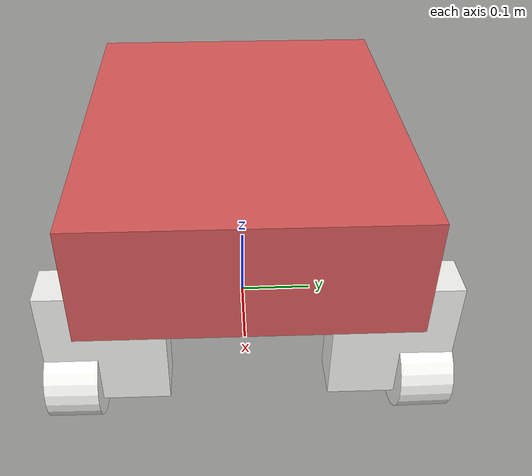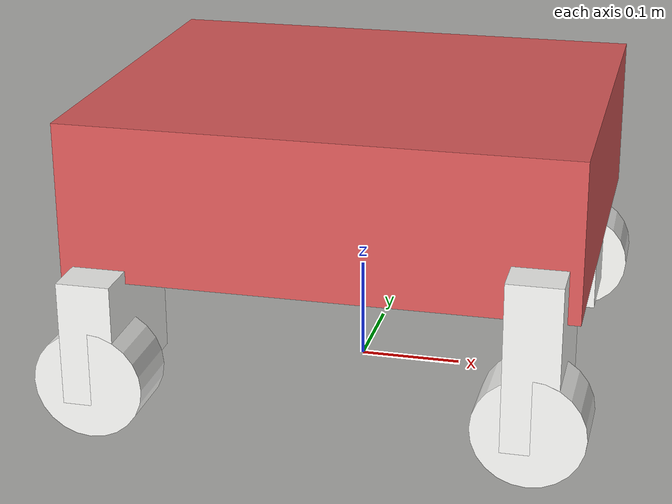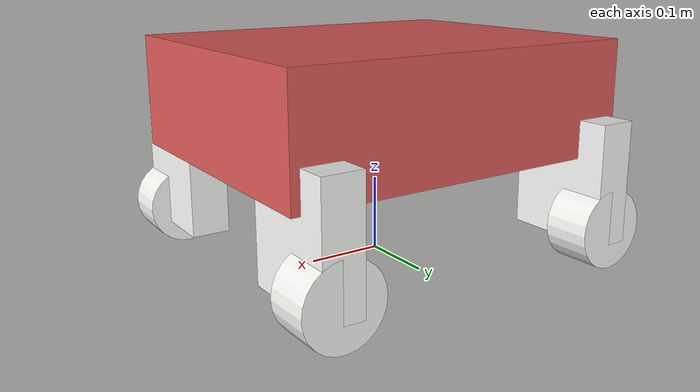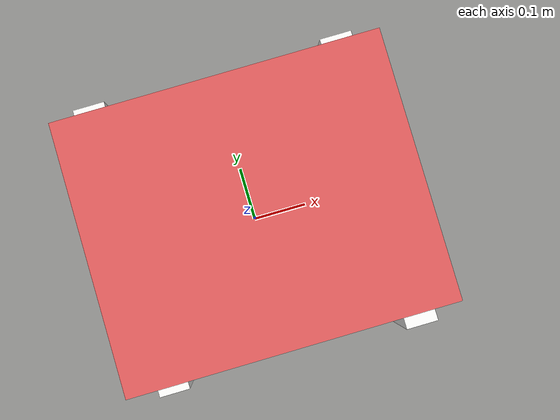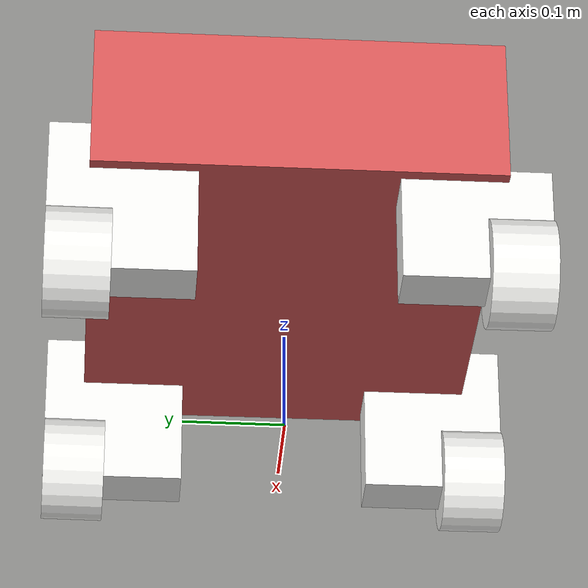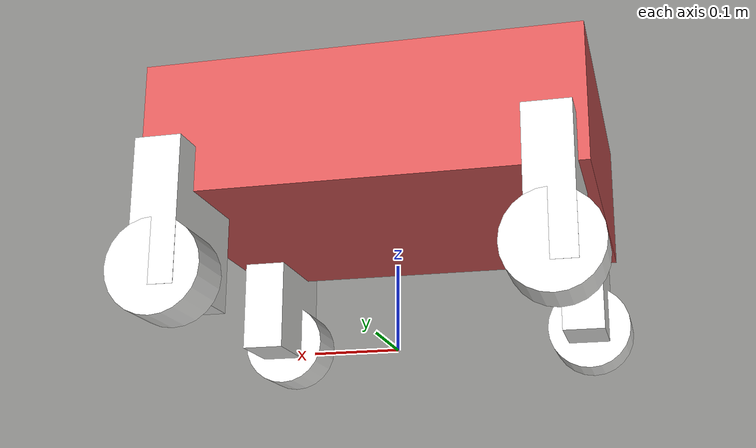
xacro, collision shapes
<?xml version="1.0" encoding="utf-8"?>
<!-- Robot model. Optional ros2_control block for real hardware (see enable_ros2_control). -->
<robot xmlns:xacro="http://www.ros.org/wiki/xacro" name="bot_v1">
  <xacro:arg name="mesh_dir" default="package://bot_description/meshes" />
  <xacro:arg name="use_lidar" default="false" />
  <xacro:arg name="use_camera" default="false" />
  <xacro:arg name="enable_ros2_control" default="false" />
  <xacro:arg name="ros2_control_name" default="bot_real_system" />
  <xacro:arg name="ros2_control_plugin" default="bot_hardware_interface/BotInterface" />
  <xacro:arg name="use_hw_topics" default="true" />

  <xacro:include filename="bot_v1.core.xacro" />
  <xacro:include filename="bot_v1.lidar.xacro" />
  <xacro:include filename="bot_v1.camera.xacro" />
  <xacro:bot_robot mesh_dir="$(arg mesh_dir)" />

  <xacro:if value="$(arg use_lidar)">
    <xacro:bot_lidar add_gazebo="false" />
  </xacro:if>

  <xacro:if value="$(arg use_camera)">
    <xacro:bot_camera mesh_dir="$(arg mesh_dir)" add_gazebo="false" />
  </xacro:if>

  <xacro:if value="$(arg enable_ros2_control)">
    <xacro:include filename="bot_v1.ros2_control.xacro" />
    <xacro:bot_ros2_control_hardware
      name="$(arg ros2_control_name)"
      plugin="$(arg ros2_control_plugin)"
      use_hw_topics="$(arg use_hw_topics)" />
  </xacro:if>
</robot>

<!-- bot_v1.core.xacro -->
<robot xmlns:xacro="http://www.ros.org/wiki/xacro">
  <xacro:macro
    name="mesh_box_link"
    params="name inertial_xyz mass ixx ixy ixz iyy iyz izz mesh_file rgba collision_origin collision_size mesh_uri_root">
    <link name="${name}">
      <inertial>
        <origin xyz="${inertial_xyz}" rpy="0 0 0" />
        <mass value="${mass}" />
        <inertia
          ixx="${ixx}"
          ixy="${ixy}"
          ixz="${ixz}"
          iyy="${iyy}"
          iyz="${iyz}"
          izz="${izz}" />
      </inertial>
      <visual>
        <origin xyz="0 0 0" rpy="0 0 0" />
        <geometry>
          <mesh filename="${mesh_uri_root}/${mesh_file}" />
        </geometry>
        <material name="">
          <color rgba="${rgba}" />
        </material>
      </visual>
      <collision>
        <origin xyz="${collision_origin}" rpy="0 0 0" />
        <geometry>
          <box size="${collision_size}" />
        </geometry>
      </collision>
    </link>
  </xacro:macro>

  <xacro:macro
    name="mesh_cylinder_link"
    params="name inertial_xyz mass ixx ixy ixz iyy iyz izz mesh_file rgba collision_origin collision_radius collision_length mesh_uri_root">
    <link name="${name}">
      <inertial>
        <origin xyz="${inertial_xyz}" rpy="0 0 0" />
        <mass value="${mass}" />
        <inertia
          ixx="${ixx}"
          ixy="${ixy}"
          ixz="${ixz}"
          iyy="${iyy}"
          iyz="${iyz}"
          izz="${izz}" />
      </inertial>
      <visual>
        <origin xyz="0 0 0" rpy="0 0 0" />
        <geometry>
          <mesh filename="${mesh_uri_root}/${mesh_file}" />
        </geometry>
        <material name="">
          <color rgba="${rgba}" />
        </material>
      </visual>
      <collision>
        <origin xyz="${collision_origin}" rpy="0 0 0" />
        <geometry>
          <cylinder radius="${collision_radius}" length="${collision_length}" />
        </geometry>
      </collision>
    </link>
  </xacro:macro>

  <xacro:macro name="steer_joint" params="name xyz parent child limit effort velocity damping friction">
    <joint name="${name}" type="revolute">
      <origin xyz="${xyz}" rpy="0 0 0" />
      <parent link="${parent}" />
      <child link="${child}" />
      <axis xyz="0 0 1" />
      <limit lower="${-limit}" upper="${limit}" effort="${effort}" velocity="${velocity}" />
      <dynamics damping="${damping}" friction="${friction}" />
    </joint>
  </xacro:macro>

  <xacro:macro name="drive_joint" params="name xyz rpy parent child axis effort velocity damping friction">
    <joint name="${name}" type="continuous">
      <origin xyz="${xyz}" rpy="${rpy}" />
      <parent link="${parent}" />
      <child link="${child}" />
      <axis xyz="${axis}" />
      <limit effort="${effort}" velocity="${velocity}" />
      <dynamics damping="${damping}" friction="${friction}" />
    </joint>
  </xacro:macro>

  <xacro:macro name="bot_robot" params="mesh_dir">
    <xacro:property name="mesh_uri_root" value="${mesh_dir}" />
    <!-- Per-wheel steering servo mechanical limit (±45 deg). -->
    <xacro:property name="front_steer_limit" value="0.7854" />
    <xacro:property name="rear_steer_limit" value="0.7854" />
    <xacro:property name="joint_effort" value="10" />
    <xacro:property name="joint_velocity" value="10" />
    <xacro:property name="joint_damping" value="0.1" />
    <xacro:property name="joint_friction" value="0.1" />
    <xacro:property name="wheel_rgba" value="0.964705882352941 0.964705882352941 0.952941176470588 1" />
    <xacro:property name="base_rgba" value="0.854901960784314 0.349019607843137 0.349019607843137 1" />
    <xacro:property name="wheel_collision_length" value="0.062" />

    <xacro:property name="wheel_radius" value="0.052" />
    <xacro:property name="track_width" value="0.33112" />
    <xacro:property name="front_axle_x" value="0.201335" />
    <xacro:property name="rear_axle_x" value="-0.204665" />
    <xacro:property name="wheelbase" value="${front_axle_x - rear_axle_x}" />
    <xacro:property name="left_steer_y" value="${track_width / 2.0}" />
    <xacro:property name="right_steer_y" value="${-track_width / 2.0}" />
    <xacro:property name="steer_mount_z_nominal" value="0.04325" />

    <xacro:property name="front_left_steer_xyz" value="${front_axle_x + 0.000065} ${left_steer_y} ${steer_mount_z_nominal + 0.000001}" />
    <xacro:property name="front_right_steer_xyz" value="${front_axle_x - 0.000065} ${right_steer_y} ${steer_mount_z_nominal}" />
    <xacro:property name="back_left_steer_xyz" value="${rear_axle_x - 0.000065} ${left_steer_y} ${steer_mount_z_nominal + 0.001999}" />
    <xacro:property name="back_right_steer_xyz" value="${rear_axle_x + 0.000065} ${right_steer_y} ${steer_mount_z_nominal}" />

    <xacro:property name="front_left_wheel_offset_xyz" value="-0.00095872 0.072001 -0.13909" />
    <xacro:property name="back_left_wheel_offset_xyz" value="-0.0005765 0.072005 -0.14109" />
    <xacro:property name="back_right_wheel_offset_xyz" value="-0.00071852 -0.073582 -0.1361" />
    <xacro:property name="front_right_wheel_offset_xyz" value="-0.00076762 -0.072004 -0.13909" />

    <xacro:property name="front_left_wheel_rpy" value="-1.5708 0 0.015251" />
    <xacro:property name="back_left_wheel_rpy" value="-1.5708 0 0.0099427" />
    <xacro:property name="back_right_wheel_rpy" value="-1.5708 0 -0.0078748" />
    <xacro:property name="front_right_wheel_rpy" value="-1.5708 0 -0.0087292" />
    <xacro:property name="base_footprint_to_base_link_z" value="0.1478" />

    <link name="base_footprint" />

    <link name="base_link" />

    <joint name="base_footprint_joint" type="fixed">
      <origin xyz="0 0 ${base_footprint_to_base_link_z}" rpy="0 0 0" />
      <parent link="base_footprint" />
      <child link="base_link" />
    </joint>

    <xacro:mesh_box_link
      name="chassis_link"
      inertial_xyz="-0.0202853583615552 -0.0035672102008257 0.0384224210186663"
      mass="2.2668069894461"
      ixx="0.00935572177906156"
      ixy="7.8725799589304E-09"
      ixz="0.00155513248174071"
      iyy="0.013073444250648"
      iyz="-4.07017227501552E-08"
      izz="0.017855946897602"
      mesh_file="base_link.STL"
      rgba="${base_rgba}"
      collision_origin="-0.001575 0 0.069"
      collision_size="0.480668 0.396114 0.150001"
      mesh_uri_root="${mesh_uri_root}" />

    <joint name="base_to_chassis_joint" type="fixed">
      <origin xyz="0 0 0" rpy="0 0 0" />
      <parent link="base_link" />
      <child link="chassis_link" />
    </joint>

    <link name="imu_link">
      <inertial>
        <origin xyz="0 0 0" rpy="0 0 0" />
        <mass value="0.001" />
        <inertia ixx="1e-6" ixy="0.0" ixz="0.0" iyy="1e-6" iyz="0.0" izz="1e-6" />
      </inertial>
    </link>

    <joint name="imu_joint" type="fixed">
      <origin xyz="0 0 0.08" rpy="0 0 0" />
      <parent link="chassis_link" />
      <child link="imu_link" />
    </joint>

    <xacro:mesh_box_link
      name="front_left_steer"
      inertial_xyz="0.00013064414965952 -0.00712793384390203 -0.099167907470358"
      mass="0.251781132487417"
      ixx="0.00021743551373503"
      ixy="1.36860311137519E-06"
      ixz="5.07501890882553E-07"
      iyy="0.000126727845844533"
      iyz="-3.34647392291718E-05"
      izz="0.000169195629547439"
      mesh_file="front_left_steer.STL"
      rgba="${wheel_rgba}"
      collision_origin="0.000305 0.000836 -0.079148"
      collision_size="0.051519 0.142418 0.160397"
      mesh_uri_root="${mesh_uri_root}" />

    <xacro:steer_joint
      name="f_left_steer"
      xyz="${front_left_steer_xyz}"
      parent="chassis_link"
      child="front_left_steer"
      limit="${front_steer_limit}"
      effort="${joint_effort}"
      velocity="${joint_velocity}"
      damping="${joint_damping}"
      friction="${joint_friction}" />

    <xacro:mesh_cylinder_link
      name="front_left_wheel"
      inertial_xyz="-0.000152709268499918 -9.70744181462424E-07 -0.0293675372404548"
      mass="0.115832809619263"
      ixx="0.000133495109179925"
      ixy="7.48118425206543E-14"
      ixz="4.06679703392529E-09"
      iyy="0.000133508500148116"
      iyz="-7.10495622112089E-10"
      izz="0.000211939042658774"
      mesh_file="front_left_wheel.STL"
      rgba="${wheel_rgba}"
      collision_origin="-0.000145 0 -0.031"
      collision_radius="${wheel_radius}"
      collision_length="${wheel_collision_length}"
      mesh_uri_root="${mesh_uri_root}" />

    <xacro:drive_joint
      name="f_leftwheel"
      xyz="${front_left_wheel_offset_xyz}"
      rpy="${front_left_wheel_rpy}"
      parent="front_left_steer"
      child="front_left_wheel"
      axis="0 0 1"
      effort="${joint_effort}"
      velocity="${joint_velocity}"
      damping="${joint_damping}"
      friction="${joint_friction}" />

    <xacro:mesh_box_link
      name="back_left_steer"
      inertial_xyz="9.28109305935038E-05 -0.00712852545284898 -0.101167907583658"
      mass="0.251781132525178"
      ixx="0.000217447487430463"
      ixy="8.87032766970658E-07"
      ixz="3.29855165907127E-07"
      iyy="0.000126715873155165"
      iyz="-3.34669623327156E-05"
      izz="0.000169195628565899"
      mesh_file="back_left_steer.STL"
      rgba="${wheel_rgba}"
      collision_origin="0.000199 0.000894 -0.081148"
      collision_size="0.050992 0.142279 0.160397"
      mesh_uri_root="${mesh_uri_root}" />

    <xacro:steer_joint
      name="b_leftsteer"
      xyz="${back_left_steer_xyz}"
      parent="chassis_link"
      child="back_left_steer"
      limit="${rear_steer_limit}"
      effort="${joint_effort}"
      velocity="${joint_velocity}"
      damping="${joint_damping}"
      friction="${joint_friction}" />

    <xacro:mesh_cylinder_link
      name="back_left_wheel"
      inertial_xyz="-0.000152709267548859 -9.71167783692106E-07 -0.029367537223414"
      mass="0.115832809709875"
      ixx="0.000133495109180129"
      ixy="3.73920551199565E-14"
      ixz="4.06679907772533E-09"
      iyy="0.00013350850014901"
      iyz="-7.10484063198117E-10"
      izz="0.000211939042658999"
      mesh_file="back_left_wheel.STL"
      rgba="${wheel_rgba}"
      collision_origin="-0.000145 0 -0.031"
      collision_radius="${wheel_radius}"
      collision_length="${wheel_collision_length}"
      mesh_uri_root="${mesh_uri_root}" />

    <xacro:drive_joint
      name="b_leftwheel"
      xyz="${back_left_wheel_offset_xyz}"
      rpy="${back_left_wheel_rpy}"
      parent="back_left_steer"
      child="back_left_wheel"
      axis="0 0 1"
      effort="${joint_effort}"
      velocity="${joint_velocity}"
      damping="${joint_damping}"
      friction="${joint_friction}" />

    <xacro:mesh_box_link
      name="back_right_steer"
      inertial_xyz="3.09555434352959E-05 0.00694767645726482 -0.104187659676429"
      mass="0.229463165297732"
      ixx="0.000207384199528673"
      ixy="-7.31104211905778E-07"
      ixz="2.67266326731571E-07"
      iyy="0.000116493139211524"
      iyz="3.35524819424789E-05"
      izz="0.00016798247146896"
      mesh_file="back_right_steer.STL"
      rgba="${wheel_rgba}"
      collision_origin="0.000157 -0.001704 -0.096554"
      collision_size="0.050786 0.143797 0.119607"
      mesh_uri_root="${mesh_uri_root}" />

    <xacro:steer_joint
      name="b_rightsteer"
      xyz="${back_right_steer_xyz}"
      parent="chassis_link"
      child="back_right_steer"
      limit="${rear_steer_limit}"
      effort="${joint_effort}"
      velocity="${joint_velocity}"
      damping="${joint_damping}"
      friction="${joint_friction}" />

    <xacro:mesh_cylinder_link
      name="back_right_wheel"
      inertial_xyz="0.000152709273591192 -9.71170377131458E-07 0.0293675371615253"
      mass="0.115832810022218"
      ixx="0.000133495109183378"
      ixy="-3.62614646190951E-14"
      ixz="4.06680017161528E-09"
      iyy="0.000133508500154647"
      iyz="7.10483036587695E-10"
      izz="0.000211939042659798"
      mesh_file="back_right_wheel.STL"
      rgba="${wheel_rgba}"
      collision_origin="0.000145 0 0.031"
      collision_radius="${wheel_radius}"
      collision_length="${wheel_collision_length}"
      mesh_uri_root="${mesh_uri_root}" />

    <xacro:drive_joint
      name="b_rightwheel"
      xyz="${back_right_wheel_offset_xyz}"
      rpy="${back_right_wheel_rpy}"
      parent="back_right_steer"
      child="back_right_wheel"
      axis="0 0 -1"
      effort="${joint_effort}"
      velocity="${joint_velocity}"
      damping="${joint_damping}"
      friction="${joint_friction}" />

    <xacro:mesh_box_link
      name="front_right_steer"
      inertial_xyz="4.05809295395687E-05 0.00712901046523262 -0.0991679078738846"
      mass="0.251781132690095"
      ixx="0.000217448974290903"
      ixy="-8.0742080901355E-07"
      ixz="2.95193136544424E-07"
      iyy="0.00012671438820613"
      iyz="3.34672871896417E-05"
      izz="0.000169195626775715"
      mesh_file="front_right_steer.STL"
      rgba="${wheel_rgba}"
      collision_origin="0.000175 -0.000905 -0.079148"
      collision_size="0.050871 0.142241 0.160397"
      mesh_uri_root="${mesh_uri_root}" />

    <xacro:steer_joint
      name="f_right_steer"
      xyz="${front_right_steer_xyz}"
      parent="chassis_link"
      child="front_right_steer"
      limit="${front_steer_limit}"
      effort="${joint_effort}"
      velocity="${joint_velocity}"
      damping="${joint_damping}"
      friction="${joint_friction}" />

    <xacro:mesh_cylinder_link
      name="front_right_wheel"
      inertial_xyz="0.00015270927387756 -9.71170482401418E-07 0.0293675371584356"
      mass="0.115832810036923"
      ixx="0.000133495109183675"
      ixy="-3.62122798652987E-14"
      ixz="4.06680027009567E-09"
      iyy="0.000133508500155057"
      iyz="7.10482989342022E-10"
      izz="0.000211939042659837"
      mesh_file="front_right_wheel.STL"
      rgba="${wheel_rgba}"
      collision_origin="0.000145 0 0.031"
      collision_radius="${wheel_radius}"
      collision_length="${wheel_collision_length}"
      mesh_uri_root="${mesh_uri_root}" />

    <xacro:drive_joint
      name="f_rightwheel"
      xyz="${front_right_wheel_offset_xyz}"
      rpy="${front_right_wheel_rpy}"
      parent="front_right_steer"
      child="front_right_wheel"
      axis="0 0 -1"
      effort="${joint_effort}"
      velocity="${joint_velocity}"
      damping="${joint_damping}"
      friction="${joint_friction}" />
  </xacro:macro>
</robot>
